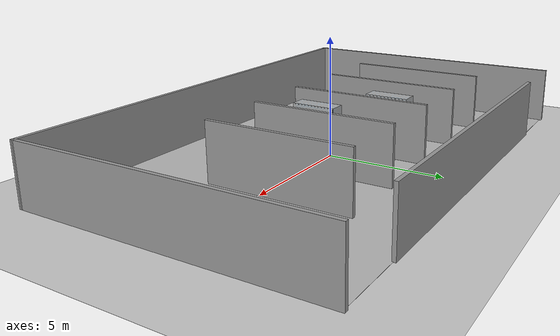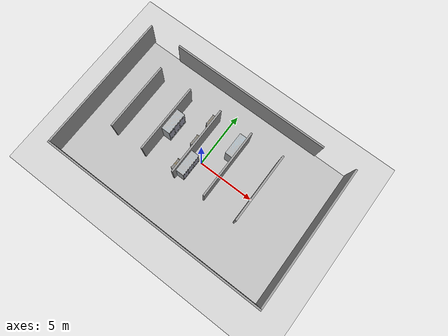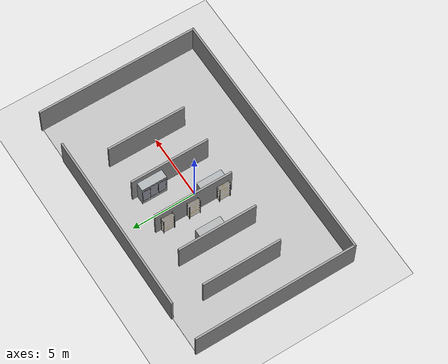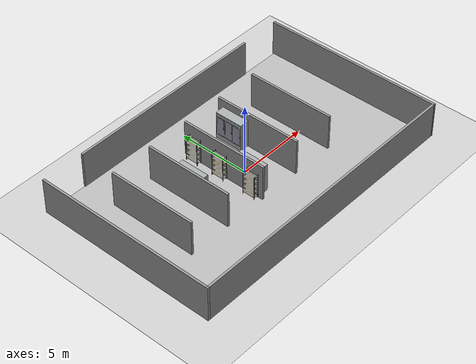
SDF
<sdf version="1.7">
 <world name="default">
  <light name="sun" type="directional">
   <pose>0 0 10 0 -0 0</pose>
   <diffuse>0.8 0.8 0.8 1</diffuse>
   <specular>0.2 0.2 0.2 1</specular>
   <attenuation>
    <range>1000</range>
    <constant>0.9</constant>
    <linear>0.01</linear>
    <quadratic>0.001</quadratic>
   </attenuation>
   <direction>-0.5 0.1 -0.9</direction>
   <spot><inner_angle>0</inner_angle><outer_angle>0</outer_angle><falloff>0</falloff></spot>
  </light>
  <model name="ground_plane">
   <static>1</static>
   <link name="link">
    <collision name="collision">
     <geometry><plane><normal>0 0 1</normal><size>100 100</size></plane></geometry>
     <surface>
      <contact><collide_bitmask>65535</collide_bitmask></contact>
      <friction><ode><mu>100</mu><mu2>50</mu2></ode></friction>
     </surface>
    </collision>
    <visual name="visual">
     <cast_shadows>0</cast_shadows>
     <geometry><plane><normal>0 0 1</normal><size>100 100</size></plane></geometry>
     <material>
      <script><uri>file://media/materials/scripts/gazebo.material</uri><name>Gazebo/Grey</name></script>
     </material>
    </visual>
   </link>
  </model>
  <gravity>0 0 -9.8</gravity>
  <magnetic_field>6e-06 2.3e-05 -4.2e-05</magnetic_field>
  <atmosphere type="adiabatic"/>
  <physics type="ode">
   <max_step_size>0.001</max_step_size>
   <real_time_factor>1</real_time_factor>
   <real_time_update_rate>1000</real_time_update_rate>
  </physics>
  <scene><ambient>0.4 0.4 0.4 1</ambient><background>0.7 0.7 0.7 1</background><shadows>1</shadows></scene>
  <spherical_coordinates>
   <surface_model>EARTH_WGS84</surface_model>
   <latitude_deg>0</latitude_deg>
   <longitude_deg>0</longitude_deg>
   <elevation>0</elevation>
   <heading_deg>0</heading_deg>
  </spherical_coordinates>
  <model name="floor">
   <link name="main">
    <pose>0 0 0.01 0 -0 0</pose>
    <collision name="main_Collision"><geometry><box><size>20 12.5 0.01</size></box></geometry></collision>
    <visual name="main_Visual">
     <geometry><box><size>20 12.5 0.01</size></box></geometry>
     <material>
      <script>
       <uri>model://floor/materials/scripts</uri>
       <uri>model://floor/materials/textures</uri>
       <name>floor</name>
      </script>
     </material>
    </visual>
   </link>
   <static>1</static>
   <pose>-0.011027 -0.013299 0 0 -0 0</pose>
  </model>
  <model name="supermarket-walls">
   <link name="Wall_0">
    <collision name="Wall_0_Collision">
     <geometry><box><size>12.65 0.15 2.5</size></box></geometry>
     <pose>0 0 1.25 0 -0 0</pose>
    </collision>
    <visual name="Wall_0_Visual">
     <pose>0 0 1.25 0 -0 0</pose>
     <geometry><box><size>12.65 0.15 2.5</size></box></geometry>
     <material>
      <script><uri>file://media/materials/scripts/gazebo.material</uri><name>Gazebo/Grey</name></script>
      <ambient>1 1 1 1</ambient>
     </material>
     <meta><layer>0</layer></meta>
    </visual>
    <pose>-10.0176 0 0 0 -0 -1.5708</pose>
   </link>
   <link name="Wall_1">
    <collision name="Wall_1_Collision">
     <geometry><box><size>20.185 0.15 2.5</size></box></geometry>
     <pose>0 0 1.25 0 -0 0</pose>
    </collision>
    <visual name="Wall_1_Visual">
     <pose>0 0 1.25 0 -0 0</pose>
     <geometry><box><size>20.185 0.15 2.5</size></box></geometry>
     <material>
      <script><uri>file://media/materials/scripts/gazebo.material</uri><name>Gazebo/Grey</name></script>
      <ambient>1 1 1 1</ambient>
     </material>
     <meta><layer>0</layer></meta>
    </visual>
    <pose>-0.000105 -6.25 0 0 -0 0</pose>
   </link>
   <link name="Wall_10">
    <collision name="Wall_10_Collision">
     <geometry><box><size>6.15 0.15 2.5</size></box></geometry>
     <pose>0 0 1.25 0 -0 0</pose>
    </collision>
    <visual name="Wall_10_Visual">
     <pose>0 0 1.25 0 -0 0</pose>
     <geometry><box><size>6.15 0.15 2.5</size></box></geometry>
     <material>
      <script><uri>file://media/materials/scripts/gazebo.material</uri><name>Gazebo/Grey</name></script>
      <ambient>1 1 1 1</ambient>
     </material>
     <meta><layer>0</layer></meta>
    </visual>
    <pose>-1.01761 0.75 0 0 -0 -1.5708</pose>
   </link>
   <link name="Wall_12">
    <collision name="Wall_12_Collision">
     <geometry><box><size>6.15 0.15 2.5</size></box></geometry>
     <pose>0 0 1.25 0 -0 0</pose>
    </collision>
    <visual name="Wall_12_Visual">
     <pose>0 0 1.25 0 -0 0</pose>
     <geometry><box><size>6.15 0.15 2.5</size></box></geometry>
     <material>
      <script><uri>file://media/materials/scripts/gazebo.material</uri><name>Gazebo/Grey</name></script>
      <ambient>1 1 1 1</ambient>
     </material>
     <meta><layer>0</layer></meta>
    </visual>
    <pose>1.98239 0.75 0 0 -0 -1.5708</pose>
   </link>
   <link name="Wall_14">
    <collision name="Wall_14_Collision">
     <geometry><box><size>6.15 0.15 2.5</size></box></geometry>
     <pose>0 0 1.25 0 -0 0</pose>
    </collision>
    <visual name="Wall_14_Visual">
     <pose>0 0 1.25 0 -0 0</pose>
     <geometry><box><size>6.15 0.15 2.5</size></box></geometry>
     <material>
      <script><uri>file://media/materials/scripts/gazebo.material</uri><name>Gazebo/Grey</name></script>
      <ambient>1 1 1 1</ambient>
     </material>
     <meta><layer>0</layer></meta>
    </visual>
    <pose>4.9824 0.75 0 0 -0 -1.5708</pose>
   </link>
   <link name="Wall_2">
    <collision name="Wall_2_Collision">
     <geometry><box><size>12.65 0.15 2.5</size></box></geometry>
     <pose>0 0 1.25 0 -0 0</pose>
    </collision>
    <visual name="Wall_2_Visual">
     <pose>0 0 1.25 0 -0 0</pose>
     <geometry><box><size>12.65 0.15 2.5</size></box></geometry>
     <material>
      <script><uri>file://media/materials/scripts/gazebo.material</uri><name>Gazebo/Grey</name></script>
      <ambient>1 1 1 1</ambient>
     </material>
     <meta><layer>0</layer></meta>
    </visual>
    <pose>9.9999 0 0 0 -0 1.5736</pose>
   </link>
   <link name="Wall_4">
    <collision name="Wall_4_Collision">
     <geometry><box><size>14.15 0.15 2.5</size></box></geometry>
     <pose>0 0 1.25 0 -0 0</pose>
    </collision>
    <visual name="Wall_4_Visual">
     <pose>0 0 1.25 0 -0 0</pose>
     <geometry><box><size>14.15 0.15 2.5</size></box></geometry>
     <material>
      <script><uri>file://media/materials/scripts/gazebo.material</uri><name>Gazebo/Grey</name></script>
      <ambient>1 1 1 1</ambient>
     </material>
     <meta><layer>0</layer></meta>
    </visual>
    <pose>-0.017605 6.25 0 0 -0 3.14159</pose>
   </link>
   <link name="Wall_6">
    <collision name="Wall_6_Collision">
     <geometry><box><size>6.15 0.15 2.5</size></box></geometry>
     <pose>0 0 1.25 0 -0 0</pose>
    </collision>
    <visual name="Wall_6_Visual">
     <pose>0 0 1.25 0 -0 0</pose>
     <geometry><box><size>6.15 0.15 2.5</size></box></geometry>
     <material>
      <script><uri>file://media/materials/scripts/gazebo.material</uri><name>Gazebo/Grey</name></script>
      <ambient>1 1 1 1</ambient>
     </material>
     <meta><layer>0</layer></meta>
    </visual>
    <pose>-7.0176 0.75 0 0 -0 -1.5708</pose>
   </link>
   <link name="Wall_8">
    <collision name="Wall_8_Collision">
     <geometry><box><size>6.15 0.15 2.5</size></box></geometry>
     <pose>0 0 1.25 0 -0 0</pose>
    </collision>
    <visual name="Wall_8_Visual">
     <pose>0 0 1.25 0 -0 0</pose>
     <geometry><box><size>6.15 0.15 2.5</size></box></geometry>
     <material>
      <script><uri>file://media/materials/scripts/gazebo.material</uri><name>Gazebo/Grey</name></script>
      <ambient>1 1 1 1</ambient>
     </material>
     <meta><layer>0</layer></meta>
    </visual>
    <pose>-4.0176 0.75 0 0 -0 -1.5708</pose>
   </link>
   <static>1</static>
  </model>
  <model name="fridge_0">
   <pose>2 3.41758 -0.175 0 0 -1.57</pose>
   <static>1</static>
   <link name="fridge_0_link">
    <visual name="visual">
     <geometry><mesh><uri>model://fridge/meshes/model.dae</uri><scale>1 1 1</scale></mesh></geometry>
    </visual>
   </link>
  </model>
  <model name="fridge_1">
   <pose>-1 -1.97511 -0.175 0 -0 1.57</pose>
   <static>1</static>
   <link name="fridge_1_link">
    <visual name="visual">
     <geometry><mesh><uri>model://fridge/meshes/model.dae</uri><scale>1 1 1</scale></mesh></geometry>
    </visual>
   </link>
  </model>
  <model name="shelf_0">
   <static>1</static>
   <link name="shelf_0_link">
    <collision name="shelf_0_collision">
     <pose>0.17 0.45 0 0 -0 0</pose>
     <geometry><box><size>0.35 0.9 2</size></box></geometry>
    </collision>
    <visual name="shelf_0_mesh">
     <geometry><mesh><uri>model://shelf/meshes/model.dae</uri></mesh></geometry>
    </visual>
   </link>
   <pose>-1.45 2.5 0 0 -0 0</pose>
  </model>
  <model name="shelf_1">
   <static>1</static>
   <link name="shelf_1_link">
    <collision name="shelf_1_collision">
     <pose>0.17 0.45 0 0 -0 0</pose>
     <geometry><box><size>0.35 0.9 2</size></box></geometry>
    </collision>
    <visual name="shelf_1_mesh">
     <geometry><mesh><uri>model://shelf/meshes/model.dae</uri></mesh></geometry>
    </visual>
   </link>
   <pose>-1.45 -2 0 0 -0 0</pose>
  </model>
  <model name="shelf_2">
   <static>1</static>
   <link name="shelf_2_link">
    <collision name="shelf_2_collision">
     <pose>0.17 0.45 0 0 -0 0</pose>
     <geometry><box><size>0.35 0.9 2</size></box></geometry>
    </collision>
    <visual name="shelf_2_mesh">
     <geometry><mesh><uri>model://shelf/meshes/model.dae</uri></mesh></geometry>
    </visual>
   </link>
   <pose>-1.45 0.434707 0 0 -0 0</pose>
  </model>
  <model name="fridge_2">
   <pose>-3.94573 -0.00515 -0.175 0 -0 1.57</pose>
   <static>1</static>
   <link name="fridge_2_link">
    <visual name="visual">
     <geometry><mesh><uri>model://fridge/meshes/model.dae</uri><scale>1 1 1</scale></mesh></geometry>
    </visual>
   </link>
  </model>
 </world>
</sdf>
